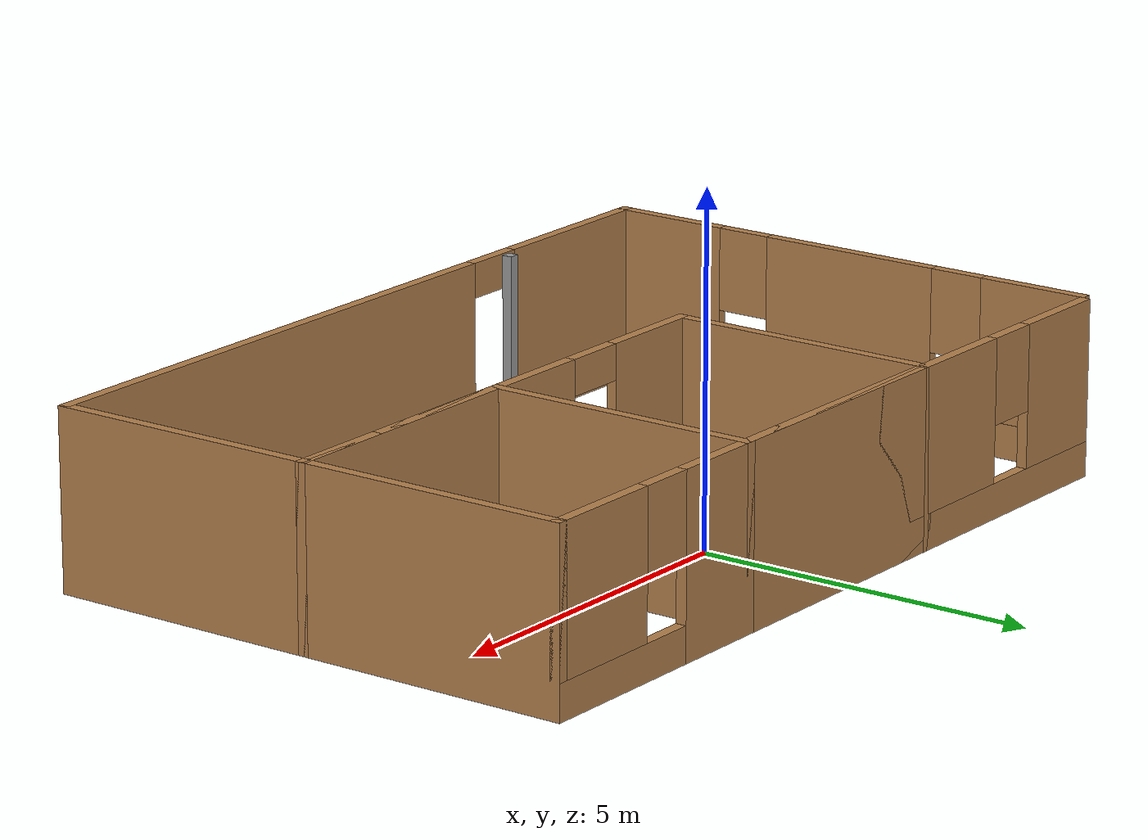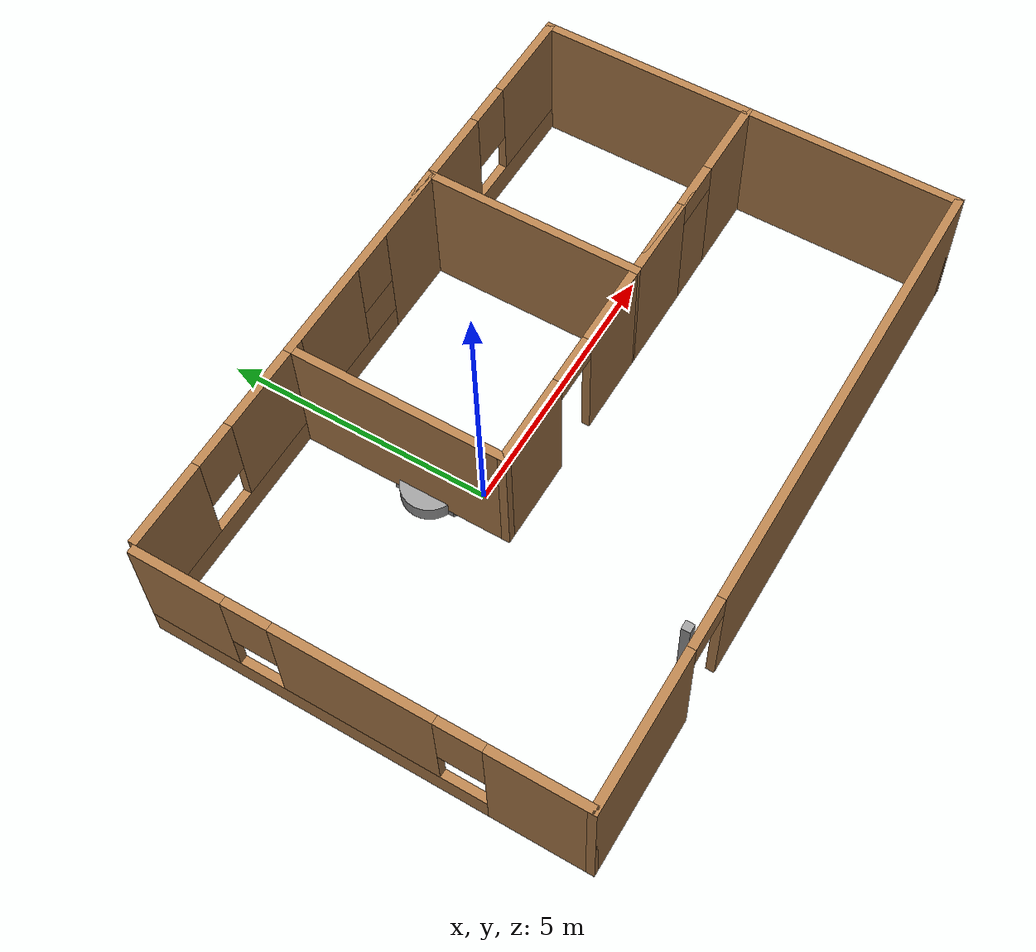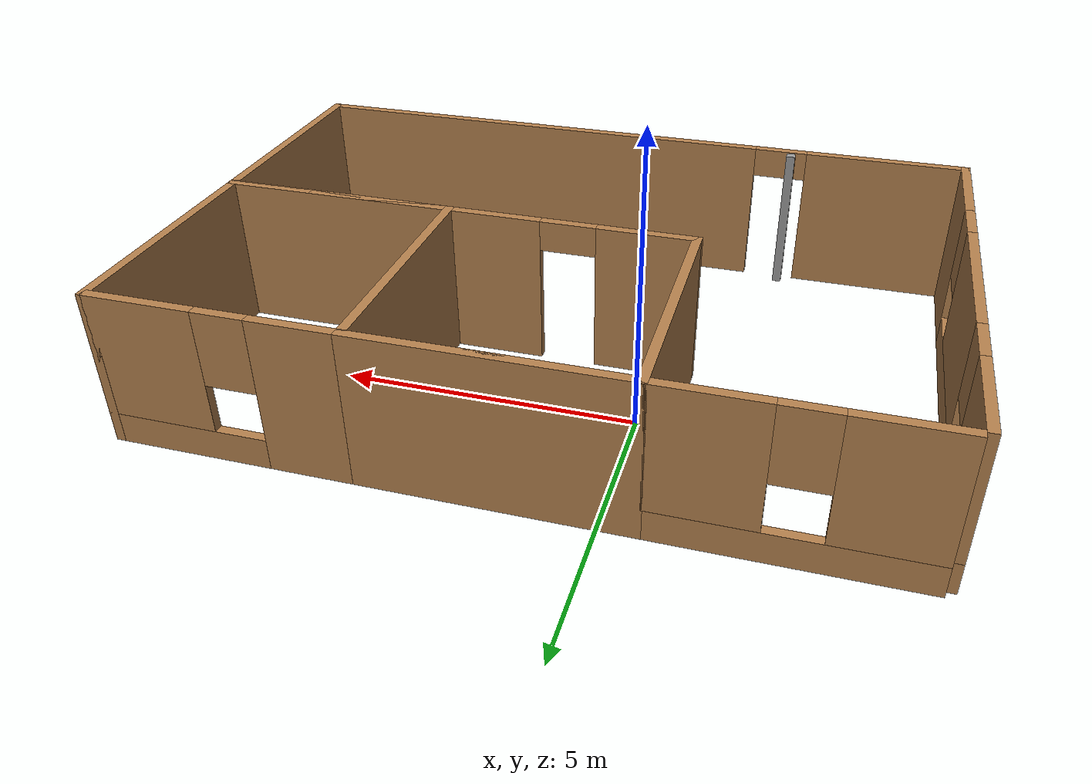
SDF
<?xml version='1.0'?>
<sdf version='1.6'>
  <model name='model'>
    <link name='link_1'>
      <pose frame=''>-0.541361 0.667486 0.5125 0 -0 0</pose>
      <inertial>
        <mass>1</mass>
        <inertia>
          <ixx>0.145833</ixx>
          <ixy>0</ixy>
          <ixz>0</ixz>
          <iyy>0.145833</iyy>
          <iyz>0</iyz>
          <izz>0.125</izz>
        </inertia>
        <pose frame=''>0 0 0 0 -0 0</pose>
      </inertial>
      <gravity>1</gravity>
      <self_collide>0</self_collide>
      <kinematic>0</kinematic>
      <visual name='visual'>
        <pose frame=''>0 0 0 0 -0 0</pose>
        <geometry>
          <cylinder>
            <radius>0.5</radius>
            <length>0.3</length>
          </cylinder>
        </geometry>
        <material>
          <lighting>1</lighting>
          <script>
            <uri>file://media/materials/scripts/gazebo.material</uri>
            <name>Gazebo/Grey</name>
          </script>
          <shader type='pixel'>
            <normal_map>__default__</normal_map>
          </shader>
          <ambient>0.3 0.3 0.3 1</ambient>
          <diffuse>0.7 0.7 0.7 1</diffuse>
          <specular>0.01 0.01 0.01 1</specular>
          <emissive>0 0 0 1</emissive>
        </material>
        <transparency>0</transparency>
        <cast_shadows>1</cast_shadows>
      </visual>
      <collision name='collision'>
        <laser_retro>0</laser_retro>
        <max_contacts>10</max_contacts>
        <pose frame=''>0 0 0 0 -0 0</pose>
        <geometry>
          <cylinder>
            <radius>0.5</radius>
            <length>0.3</length>
          </cylinder>
        </geometry>
        <surface>
          <friction>
            <ode>
              <mu>1</mu>
              <mu2>1</mu2>
              <fdir1>0 0 0</fdir1>
              <slip1>0</slip1>
              <slip2>0</slip2>
            </ode>
            <torsional>
              <coefficient>1</coefficient>
              <patch_radius>0</patch_radius>
              <surface_radius>0</surface_radius>
              <use_patch_radius>1</use_patch_radius>
              <ode>
                <slip>0</slip>
              </ode>
            </torsional>
          </friction>
          <bounce>
            <restitution_coefficient>0</restitution_coefficient>
            <threshold>1e+06</threshold>
          </bounce>
          <contact>
            <collide_without_contact>0</collide_without_contact>
            <collide_without_contact_bitmask>1</collide_without_contact_bitmask>
            <collide_bitmask>1</collide_bitmask>
            <ode>
              <soft_cfm>0</soft_cfm>
              <soft_erp>0.2</soft_erp>
              <kp>1e+13</kp>
              <kd>1</kd>
              <max_vel>0.01</max_vel>
              <min_depth>0</min_depth>
            </ode>
            <bullet>
              <split_impulse>1</split_impulse>
              <split_impulse_penetration_threshold>-0.01</split_impulse_penetration_threshold>
              <soft_cfm>0</soft_cfm>
              <soft_erp>0.2</soft_erp>
              <kp>1e+13</kp>
              <kd>1</kd>
            </bullet>
          </contact>
        </surface>
      </collision>
    </link>
    <link name='link_2'>
      <pose frame=''>-0.541361 1.16749 0.4125 1.5707 -0 0</pose>
      <inertial>
        <mass>1</mass>
        <inertia>
          <ixx>0.145833</ixx>
          <ixy>0</ixy>
          <ixz>0</ixz>
          <iyy>0.145833</iyy>
          <iyz>0</iyz>
          <izz>0.125</izz>
        </inertia>
        <pose frame=''>0 0 0 0 -0 0</pose>
      </inertial>
      <gravity>1</gravity>
      <self_collide>0</self_collide>
      <kinematic>0</kinematic>
      <visual name='visual'>
        <pose frame=''>0 0 0 0 -0 0</pose>
        <geometry>
          <cylinder>
            <radius>0.2</radius>
            <length>0.1</length>
          </cylinder>
        </geometry>
        <material>
          <lighting>1</lighting>
          <script>
            <uri>file://media/materials/scripts/gazebo.material</uri>
            <name>Gazebo/Grey</name>
          </script>
          <shader type='pixel'>
            <normal_map>__default__</normal_map>
          </shader>
          <ambient>0.3 0.3 0.3 1</ambient>
          <diffuse>0.7 0.7 0.7 1</diffuse>
          <specular>0.01 0.01 0.01 1</specular>
          <emissive>0 0 0 1</emissive>
        </material>
        <transparency>0</transparency>
        <cast_shadows>1</cast_shadows>
      </visual>
      <collision name='collision'>
        <laser_retro>0</laser_retro>
        <max_contacts>10</max_contacts>
        <pose frame=''>0 0 0 0 -0 0</pose>
        <geometry>
          <cylinder>
            <radius>0.2</radius>
            <length>0.1</length>
          </cylinder>
        </geometry>
        <surface>
          <friction>
            <ode>
              <mu>1</mu>
              <mu2>1</mu2>
              <fdir1>0 0 0</fdir1>
              <slip1>0</slip1>
              <slip2>0</slip2>
            </ode>
            <torsional>
              <coefficient>1</coefficient>
              <patch_radius>0</patch_radius>
              <surface_radius>0</surface_radius>
              <use_patch_radius>1</use_patch_radius>
              <ode>
                <slip>0</slip>
              </ode>
            </torsional>
          </friction>
          <bounce>
            <restitution_coefficient>0</restitution_coefficient>
            <threshold>1e+06</threshold>
          </bounce>
          <contact>
            <collide_without_contact>0</collide_without_contact>
            <collide_without_contact_bitmask>1</collide_without_contact_bitmask>
            <collide_bitmask>1</collide_bitmask>
            <ode>
              <soft_cfm>0</soft_cfm>
              <soft_erp>0.2</soft_erp>
              <kp>1e+13</kp>
              <kd>1</kd>
              <max_vel>0.01</max_vel>
              <min_depth>0</min_depth>
            </ode>
            <bullet>
              <split_impulse>1</split_impulse>
              <split_impulse_penetration_threshold>-0.01</split_impulse_penetration_threshold>
              <soft_cfm>0</soft_cfm>
              <soft_erp>0.2</soft_erp>
              <kp>1e+13</kp>
              <kd>1</kd>
            </bullet>
          </contact>
        </surface>
      </collision>
    </link>
    <link name='link_2_clone_0'>
      <pose frame=''>-0.541361 0.167486 0.4125 1.5707 -0 0</pose>
      <inertial>
        <mass>1</mass>
        <inertia>
          <ixx>0.145833</ixx>
          <ixy>0</ixy>
          <ixz>0</ixz>
          <iyy>0.145833</iyy>
          <iyz>0</iyz>
          <izz>0.125</izz>
        </inertia>
        <pose frame=''>0 0 0 0 -0 0</pose>
      </inertial>
      <self_collide>0</self_collide>
      <kinematic>0</kinematic>
      <gravity>1</gravity>
      <visual name='visual'>
        <pose frame=''>0 0 0 0 -0 0</pose>
        <geometry>
          <cylinder>
            <radius>0.2</radius>
            <length>0.1</length>
          </cylinder>
        </geometry>
        <material>
          <lighting>1</lighting>
          <script>
            <uri>file://media/materials/scripts/gazebo.material</uri>
            <name>Gazebo/Grey</name>
          </script>
          <shader type='pixel'>
            <normal_map>__default__</normal_map>
          </shader>
          <ambient>0.3 0.3 0.3 1</ambient>
          <diffuse>0.7 0.7 0.7 1</diffuse>
          <specular>0.01 0.01 0.01 1</specular>
          <emissive>0 0 0 1</emissive>
        </material>
        <transparency>0</transparency>
        <cast_shadows>1</cast_shadows>
      </visual>
      <collision name='collision'>
        <laser_retro>0</laser_retro>
        <max_contacts>10</max_contacts>
        <pose frame=''>0 0 0 0 -0 0</pose>
        <geometry>
          <cylinder>
            <radius>0.2</radius>
            <length>0.1</length>
          </cylinder>
        </geometry>
        <surface>
          <friction>
            <ode>
              <mu>1</mu>
              <mu2>1</mu2>
              <fdir1>0 0 0</fdir1>
              <slip1>0</slip1>
              <slip2>0</slip2>
            </ode>
            <torsional>
              <coefficient>1</coefficient>
              <patch_radius>0</patch_radius>
              <surface_radius>0</surface_radius>
              <use_patch_radius>1</use_patch_radius>
              <ode>
                <slip>0</slip>
              </ode>
            </torsional>
          </friction>
          <bounce>
            <restitution_coefficient>0</restitution_coefficient>
            <threshold>1e+06</threshold>
          </bounce>
          <contact>
            <collide_without_contact>0</collide_without_contact>
            <collide_without_contact_bitmask>1</collide_without_contact_bitmask>
            <collide_bitmask>1</collide_bitmask>
            <ode>
              <soft_cfm>0</soft_cfm>
              <soft_erp>0.2</soft_erp>
              <kp>1e+13</kp>
              <kd>1</kd>
              <max_vel>0.01</max_vel>
              <min_depth>0</min_depth>
            </ode>
            <bullet>
              <split_impulse>1</split_impulse>
              <split_impulse_penetration_threshold>-0.01</split_impulse_penetration_threshold>
              <soft_cfm>0</soft_cfm>
              <soft_erp>0.2</soft_erp>
              <kp>1e+13</kp>
              <kd>1</kd>
            </bullet>
          </contact>
        </surface>
      </collision>
    </link>
    <model name='model'>
      <pose frame=''>1.26807 -0.87112 0.4625 0 -0 0</pose>
      <link name='Wall_11'>
        <pose frame=''>0 -3.85 0 0 -0 0</pose>
        <visual name='Wall_11_Visual_0'>
          <pose frame=''>-4.61809 0 1.25 0 -0 0</pose>
          <geometry>
            <box>
              <size>2.76382 0.15 2.5</size>
            </box>
          </geometry>
          <material>
            <script>
              <uri>file://media/materials/scripts/gazebo.material</uri>
              <name>Gazebo/Wood</name>
            </script>
            <ambient>1 1 1 1</ambient>
          </material>
          <meta>
            <layer>0</layer>
          </meta>
        </visual>
        <collision name='Wall_11_Collision_0'>
          <geometry>
            <box>
              <size>2.76382 0.15 2.5</size>
            </box>
          </geometry>
          <pose frame=''>-4.61809 0 1.25 0 -0 0</pose>
        </collision>
        <visual name='Wall_11_Visual_1'>
          <pose frame=''>1.83191 0 1.25 0 -0 0</pose>
          <geometry>
            <box>
              <size>8.33618 0.15 2.5</size>
            </box>
          </geometry>
          <material>
            <script>
              <uri>file://media/materials/scripts/gazebo.material</uri>
              <name>Gazebo/Wood</name>
            </script>
            <ambient>1 1 1 1</ambient>
          </material>
          <meta>
            <layer>0</layer>
          </meta>
        </visual>
        <collision name='Wall_11_Collision_1'>
          <geometry>
            <box>
              <size>8.33618 0.15 2.5</size>
            </box>
          </geometry>
          <pose frame=''>1.83191 0 1.25 0 -0 0</pose>
        </collision>
        <visual name='Wall_11_Visual_2'>
          <pose frame=''>-2.78618 0 2.25 0 -0 0</pose>
          <geometry>
            <box>
              <size>0.9 0.15 0.5</size>
            </box>
          </geometry>
          <material>
            <script>
              <uri>file://media/materials/scripts/gazebo.material</uri>
              <name>Gazebo/Wood</name>
            </script>
            <ambient>1 1 1 1</ambient>
          </material>
          <meta>
            <layer>0</layer>
          </meta>
        </visual>
        <collision name='Wall_11_Collision_2'>
          <geometry>
            <box>
              <size>0.9 0.15 0.5</size>
            </box>
          </geometry>
          <pose frame=''>-2.78618 0 2.25 0 -0 0</pose>
        </collision>
      </link>
      <link name='Wall_12'>
        <collision name='Wall_12_Collision'>
          <geometry>
            <box>
              <size>4 0.15 2.5</size>
            </box>
          </geometry>
          <pose frame=''>0 0 1.25 0 -0 0</pose>
        </collision>
        <visual name='Wall_12_Visual'>
          <pose frame=''>0 0 1.25 0 -0 0</pose>
          <geometry>
            <box>
              <size>4 0.15 2.5</size>
            </box>
          </geometry>
          <material>
            <script>
              <uri>file://media/materials/scripts/gazebo.material</uri>
              <name>Gazebo/Wood</name>
            </script>
            <ambient>1 1 1 1</ambient>
          </material>
          <meta>
            <layer>0</layer>
          </meta>
        </visual>
        <pose frame=''>5.925 -1.925 0 0 -0 1.5708</pose>
      </link>
      <link name='Wall_13'>
        <collision name='Wall_13_Collision'>
          <geometry>
            <box>
              <size>4 0.15 2.5</size>
            </box>
          </geometry>
          <pose frame=''>0 0 1.25 0 -0 0</pose>
        </collision>
        <visual name='Wall_13_Visual'>
          <pose frame=''>0 0 1.25 0 -0 0</pose>
          <geometry>
            <box>
              <size>4 0.15 2.5</size>
            </box>
          </geometry>
          <material>
            <script>
              <uri>file://media/materials/scripts/gazebo.material</uri>
              <name>Gazebo/Wood</name>
            </script>
            <ambient>1 1 1 1</ambient>
          </material>
          <meta>
            <layer>0</layer>
          </meta>
        </visual>
        <pose frame=''>4 0 0 0 -0 3.14159</pose>
      </link>
      <link name='Wall_14'>
        <collision name='Wall_14_Collision'>
          <geometry>
            <box>
              <size>4 0.15 2.5</size>
            </box>
          </geometry>
          <pose frame=''>0 0 1.25 0 -0 0</pose>
        </collision>
        <visual name='Wall_14_Visual'>
          <pose frame=''>0 0 1.25 0 -0 0</pose>
          <geometry>
            <box>
              <size>4 0.15 2.5</size>
            </box>
          </geometry>
          <material>
            <script>
              <uri>file://media/materials/scripts/gazebo.material</uri>
              <name>Gazebo/Wood</name>
            </script>
            <ambient>1 1 1 1</ambient>
          </material>
          <meta>
            <layer>0</layer>
          </meta>
        </visual>
        <pose frame=''>2.075 1.925 0 0 -0 1.5708</pose>
      </link>
      <link name='Wall_15'>
        <pose frame=''>4 3.85 0 0 -0 0</pose>
        <visual name='Wall_15_Visual_0'>
          <pose frame=''>-1.28136 0 1.25 0 -0 0</pose>
          <geometry>
            <box>
              <size>1.43727 0.15 2.5</size>
            </box>
          </geometry>
          <material>
            <script>
              <uri>file://media/materials/scripts/gazebo.material</uri>
              <name>Gazebo/Wood</name>
            </script>
            <ambient>1 1 1 1</ambient>
          </material>
          <meta>
            <layer>0</layer>
          </meta>
        </visual>
        <collision name='Wall_15_Collision_0'>
          <geometry>
            <box>
              <size>1.43727 0.15 2.5</size>
            </box>
          </geometry>
          <pose frame=''>-1.28136 0 1.25 0 -0 0</pose>
        </collision>
        <visual name='Wall_15_Visual_1'>
          <pose frame=''>0.718636 0 0.25 0 -0 0</pose>
          <geometry>
            <box>
              <size>2.56273 0.15 0.5</size>
            </box>
          </geometry>
          <material>
            <script>
              <uri>file://media/materials/scripts/gazebo.material</uri>
              <name>Gazebo/Wood</name>
            </script>
            <ambient>1 1 1 1</ambient>
          </material>
          <meta>
            <layer>0</layer>
          </meta>
        </visual>
        <collision name='Wall_15_Collision_1'>
          <geometry>
            <box>
              <size>2.56273 0.15 0.5</size>
            </box>
          </geometry>
          <pose frame=''>0.718636 0 0.25 0 -0 0</pose>
        </collision>
        <visual name='Wall_15_Visual_2'>
          <pose frame=''>1.11864 0 1.5 0 -0 0</pose>
          <geometry>
            <box>
              <size>1.76273 0.15 2</size>
            </box>
          </geometry>
          <material>
            <script>
              <uri>file://media/materials/scripts/gazebo.material</uri>
              <name>Gazebo/Wood</name>
            </script>
            <ambient>1 1 1 1</ambient>
          </material>
          <meta>
            <layer>0</layer>
          </meta>
        </visual>
        <collision name='Wall_15_Collision_2'>
          <geometry>
            <box>
              <size>1.76273 0.15 2</size>
            </box>
          </geometry>
          <pose frame=''>1.11864 0 1.5 0 -0 0</pose>
        </collision>
        <visual name='Wall_15_Visual_3'>
          <pose frame=''>-0.162727 0 1.9 0 -0 0</pose>
          <geometry>
            <box>
              <size>0.8 0.15 1.2</size>
            </box>
          </geometry>
          <material>
            <script>
              <uri>file://media/materials/scripts/gazebo.material</uri>
              <name>Gazebo/Wood</name>
            </script>
            <ambient>1 1 1 1</ambient>
          </material>
          <meta>
            <layer>0</layer>
          </meta>
        </visual>
        <collision name='Wall_15_Collision_3'>
          <geometry>
            <box>
              <size>0.8 0.15 1.2</size>
            </box>
          </geometry>
          <pose frame=''>-0.162727 0 1.9 0 -0 0</pose>
        </collision>
      </link>
      <link name='Wall_16'>
        <collision name='Wall_16_Collision'>
          <geometry>
            <box>
              <size>4 0.15 2.5</size>
            </box>
          </geometry>
          <pose frame=''>0 0 1.25 0 -0 0</pose>
        </collision>
        <visual name='Wall_16_Visual'>
          <pose frame=''>0 0 1.25 0 -0 0</pose>
          <geometry>
            <box>
              <size>4 0.15 2.5</size>
            </box>
          </geometry>
          <material>
            <script>
              <uri>file://media/materials/scripts/gazebo.material</uri>
              <name>Gazebo/Wood</name>
            </script>
            <ambient>1 1 1 1</ambient>
          </material>
          <meta>
            <layer>0</layer>
          </meta>
        </visual>
        <pose frame=''>5.925 1.925 0 0 0 -1.5708</pose>
      </link>
      <link name='Wall_17'>
        <pose frame=''>2 0 0 0 -0 3.14159</pose>
        <visual name='Wall_17_Visual_0'>
          <pose frame=''>-3.25004 0 1.25 0 -0 0</pose>
          <geometry>
            <box>
              <size>1.49992 0.15 2.5</size>
            </box>
          </geometry>
          <material>
            <script>
              <uri>file://media/materials/scripts/gazebo.material</uri>
              <name>Gazebo/Wood</name>
            </script>
            <ambient>1 1 1 1</ambient>
          </material>
          <meta>
            <layer>0</layer>
          </meta>
        </visual>
        <collision name='Wall_17_Collision_0'>
          <geometry>
            <box>
              <size>1.49992 0.15 2.5</size>
            </box>
          </geometry>
          <pose frame=''>-3.25004 0 1.25 0 -0 0</pose>
        </collision>
        <visual name='Wall_17_Visual_1'>
          <pose frame=''>-0.06836 0 1.25 0 -0 0</pose>
          <geometry>
            <box>
              <size>3.06343 0.15 2.5</size>
            </box>
          </geometry>
          <material>
            <script>
              <uri>file://media/materials/scripts/gazebo.material</uri>
              <name>Gazebo/Wood</name>
            </script>
            <ambient>1 1 1 1</ambient>
          </material>
          <meta>
            <layer>0</layer>
          </meta>
        </visual>
        <collision name='Wall_17_Collision_1'>
          <geometry>
            <box>
              <size>3.06343 0.15 2.5</size>
            </box>
          </geometry>
          <pose frame=''>-0.06836 0 1.25 0 -0 0</pose>
        </collision>
        <visual name='Wall_17_Visual_2'>
          <pose frame=''>3.18168 0 1.25 0 -0 0</pose>
          <geometry>
            <box>
              <size>1.63664 0.15 2.5</size>
            </box>
          </geometry>
          <material>
            <script>
              <uri>file://media/materials/scripts/gazebo.material</uri>
              <name>Gazebo/Wood</name>
            </script>
            <ambient>1 1 1 1</ambient>
          </material>
          <meta>
            <layer>0</layer>
          </meta>
        </visual>
        <collision name='Wall_17_Collision_2'>
          <geometry>
            <box>
              <size>1.63664 0.15 2.5</size>
            </box>
          </geometry>
          <pose frame=''>3.18168 0 1.25 0 -0 0</pose>
        </collision>
        <visual name='Wall_17_Visual_3'>
          <pose frame=''>-2.05008 0 2.25 0 -0 0</pose>
          <geometry>
            <box>
              <size>0.9 0.15 0.5</size>
            </box>
          </geometry>
          <material>
            <script>
              <uri>file://media/materials/scripts/gazebo.material</uri>
              <name>Gazebo/Wood</name>
            </script>
            <ambient>1 1 1 1</ambient>
          </material>
          <meta>
            <layer>0</layer>
          </meta>
        </visual>
        <collision name='Wall_17_Collision_3'>
          <geometry>
            <box>
              <size>0.9 0.15 0.5</size>
            </box>
          </geometry>
          <pose frame=''>-2.05008 0 2.25 0 -0 0</pose>
        </collision>
        <visual name='Wall_17_Visual_4'>
          <pose frame=''>1.91335 0 2.25 0 -0 0</pose>
          <geometry>
            <box>
              <size>0.9 0.15 0.5</size>
            </box>
          </geometry>
          <material>
            <script>
              <uri>file://media/materials/scripts/gazebo.material</uri>
              <name>Gazebo/Wood</name>
            </script>
            <ambient>1 1 1 1</ambient>
          </material>
          <meta>
            <layer>0</layer>
          </meta>
        </visual>
        <collision name='Wall_17_Collision_4'>
          <geometry>
            <box>
              <size>0.9 0.15 0.5</size>
            </box>
          </geometry>
          <pose frame=''>1.91335 0 2.25 0 -0 0</pose>
        </collision>
      </link>
      <link name='Wall_18'>
        <collision name='Wall_18_Collision'>
          <geometry>
            <box>
              <size>4 0.15 2.5</size>
            </box>
          </geometry>
          <pose frame=''>0 0 1.25 0 -0 0</pose>
        </collision>
        <visual name='Wall_18_Visual'>
          <pose frame=''>0 0 1.25 0 -0 0</pose>
          <geometry>
            <box>
              <size>4 0.15 2.5</size>
            </box>
          </geometry>
          <material>
            <script>
              <uri>file://media/materials/scripts/gazebo.material</uri>
              <name>Gazebo/Wood</name>
            </script>
            <ambient>1 1 1 1</ambient>
          </material>
          <meta>
            <layer>0</layer>
          </meta>
        </visual>
        <pose frame=''>-1.925 1.925 0 0 -0 1.5708</pose>
      </link>
      <link name='Wall_19'>
        <collision name='Wall_19_Collision'>
          <geometry>
            <box>
              <size>4.15 0.15 2.5</size>
            </box>
          </geometry>
          <pose frame=''>0 0 1.25 0 -0 0</pose>
        </collision>
        <visual name='Wall_19_Visual'>
          <pose frame=''>0 0 1.25 0 -0 0</pose>
          <geometry>
            <box>
              <size>4.15 0.15 2.5</size>
            </box>
          </geometry>
          <material>
            <script>
              <uri>file://media/materials/scripts/gazebo.material</uri>
              <name>Gazebo/Wood</name>
            </script>
            <ambient>1 1 1 1</ambient>
          </material>
          <meta>
            <layer>0</layer>
          </meta>
        </visual>
        <pose frame=''>0.075 3.85 0 0 -0 0</pose>
      </link>
      <link name='Wall_20'>
        <pose frame=''>-1.85 3.85 0 0 -0 3.14159</pose>
        <visual name='Wall_20_Visual_0'>
          <pose frame=''>-3.24812 0 1.25 0 -0 0</pose>
          <geometry>
            <box>
              <size>1.50375 0.15 2.5</size>
            </box>
          </geometry>
          <material>
            <script>
              <uri>file://media/materials/scripts/gazebo.material</uri>
              <name>Gazebo/Wood</name>
            </script>
            <ambient>1 1 1 1</ambient>
          </material>
          <meta>
            <layer>0</layer>
          </meta>
        </visual>
        <collision name='Wall_20_Collision_0'>
          <geometry>
            <box>
              <size>1.50375 0.15 2.5</size>
            </box>
          </geometry>
          <pose frame=''>-3.24812 0 1.25 0 -0 0</pose>
        </collision>
        <visual name='Wall_20_Visual_1'>
          <pose frame=''>0.751877 0 0.25 0 -0 0</pose>
          <geometry>
            <box>
              <size>6.49625 0.15 0.5</size>
            </box>
          </geometry>
          <material>
            <script>
              <uri>file://media/materials/scripts/gazebo.material</uri>
              <name>Gazebo/Wood</name>
            </script>
            <ambient>1 1 1 1</ambient>
          </material>
          <meta>
            <layer>0</layer>
          </meta>
        </visual>
        <collision name='Wall_20_Collision_1'>
          <geometry>
            <box>
              <size>6.49625 0.15 0.5</size>
            </box>
          </geometry>
          <pose frame=''>0.751877 0 0.25 0 -0 0</pose>
        </collision>
        <visual name='Wall_20_Visual_2'>
          <pose frame=''>-0.008131 0 1.5 0 -0 0</pose>
          <geometry>
            <box>
              <size>3.37623 0.15 2</size>
            </box>
          </geometry>
          <material>
            <script>
              <uri>file://media/materials/scripts/gazebo.material</uri>
              <name>Gazebo/Wood</name>
            </script>
            <ambient>1 1 1 1</ambient>
          </material>
          <meta>
            <layer>0</layer>
          </meta>
        </visual>
        <collision name='Wall_20_Collision_2'>
          <geometry>
            <box>
              <size>3.37623 0.15 2</size>
            </box>
          </geometry>
          <pose frame=''>-0.008131 0 1.5 0 -0 0</pose>
        </collision>
        <visual name='Wall_20_Visual_3'>
          <pose frame=''>3.23999 0 1.5 0 -0 0</pose>
          <geometry>
            <box>
              <size>1.52001 0.15 2</size>
            </box>
          </geometry>
          <material>
            <script>
              <uri>file://media/materials/scripts/gazebo.material</uri>
              <name>Gazebo/Wood</name>
            </script>
            <ambient>1 1 1 1</ambient>
          </material>
          <meta>
            <layer>0</layer>
          </meta>
        </visual>
        <collision name='Wall_20_Collision_3'>
          <geometry>
            <box>
              <size>1.52001 0.15 2</size>
            </box>
          </geometry>
          <pose frame=''>3.23999 0 1.5 0 -0 0</pose>
        </collision>
        <visual name='Wall_20_Visual_4'>
          <pose frame=''>-2.09625 0 1.9 0 -0 0</pose>
          <geometry>
            <box>
              <size>0.8 0.15 1.2</size>
            </box>
          </geometry>
          <material>
            <script>
              <uri>file://media/materials/scripts/gazebo.material</uri>
              <name>Gazebo/Wood</name>
            </script>
            <ambient>1 1 1 1</ambient>
          </material>
          <meta>
            <layer>0</layer>
          </meta>
        </visual>
        <collision name='Wall_20_Collision_4'>
          <geometry>
            <box>
              <size>0.8 0.15 1.2</size>
            </box>
          </geometry>
          <pose frame=''>-2.09625 0 1.9 0 -0 0</pose>
        </collision>
        <visual name='Wall_20_Visual_5'>
          <pose frame=''>2.07999 0 1.9 0 -0 0</pose>
          <geometry>
            <box>
              <size>0.8 0.15 1.2</size>
            </box>
          </geometry>
          <material>
            <script>
              <uri>file://media/materials/scripts/gazebo.material</uri>
              <name>Gazebo/Wood</name>
            </script>
            <ambient>1 1 1 1</ambient>
          </material>
          <meta>
            <layer>0</layer>
          </meta>
        </visual>
        <collision name='Wall_20_Collision_5'>
          <geometry>
            <box>
              <size>0.8 0.15 1.2</size>
            </box>
          </geometry>
          <pose frame=''>2.07999 0 1.9 0 -0 0</pose>
        </collision>
      </link>
      <link name='Wall_23'>
        <pose frame=''>-5.925 -0.05 0 0 -0 1.5708</pose>
        <visual name='Wall_23_Visual_0'>
          <pose frame=''>-2.98532 0 1.25 0 -0 0</pose>
          <geometry>
            <box>
              <size>1.77936 0.15 2.5</size>
            </box>
          </geometry>
          <material>
            <script>
              <uri>file://media/materials/scripts/gazebo.material</uri>
              <name>Gazebo/Wood</name>
            </script>
            <ambient>1 1 1 1</ambient>
          </material>
          <meta>
            <layer>0</layer>
          </meta>
        </visual>
        <collision name='Wall_23_Collision_0'>
          <geometry>
            <box>
              <size>1.77936 0.15 2.5</size>
            </box>
          </geometry>
          <pose frame=''>-2.98532 0 1.25 0 -0 0</pose>
        </collision>
        <visual name='Wall_23_Visual_1'>
          <pose frame=''>0.889679 0 0.25 0 -0 0</pose>
          <geometry>
            <box>
              <size>5.97064 0.15 0.5</size>
            </box>
          </geometry>
          <material>
            <script>
              <uri>file://media/materials/scripts/gazebo.material</uri>
              <name>Gazebo/Wood</name>
            </script>
            <ambient>1 1 1 1</ambient>
          </material>
          <meta>
            <layer>0</layer>
          </meta>
        </visual>
        <collision name='Wall_23_Collision_1'>
          <geometry>
            <box>
              <size>5.97064 0.15 0.5</size>
            </box>
          </geometry>
          <pose frame=''>0.889679 0 0.25 0 -0 0</pose>
        </collision>
        <visual name='Wall_23_Visual_2'>
          <pose frame=''>0.07327 0 1.5 0 -0 0</pose>
          <geometry>
            <box>
              <size>2.73783 0.15 2</size>
            </box>
          </geometry>
          <material>
            <script>
              <uri>file://media/materials/scripts/gazebo.material</uri>
              <name>Gazebo/Wood</name>
            </script>
            <ambient>1 1 1 1</ambient>
          </material>
          <meta>
            <layer>0</layer>
          </meta>
        </visual>
        <collision name='Wall_23_Collision_2'>
          <geometry>
            <box>
              <size>2.73783 0.15 2</size>
            </box>
          </geometry>
          <pose frame=''>0.07327 0 1.5 0 -0 0</pose>
        </collision>
        <visual name='Wall_23_Visual_3'>
          <pose frame=''>3.05859 0 1.5 0 -0 0</pose>
          <geometry>
            <box>
              <size>1.63282 0.15 2</size>
            </box>
          </geometry>
          <material>
            <script>
              <uri>file://media/materials/scripts/gazebo.material</uri>
              <name>Gazebo/Wood</name>
            </script>
            <ambient>1 1 1 1</ambient>
          </material>
          <meta>
            <layer>0</layer>
          </meta>
        </visual>
        <collision name='Wall_23_Collision_3'>
          <geometry>
            <box>
              <size>1.63282 0.15 2</size>
            </box>
          </geometry>
          <pose frame=''>3.05859 0 1.5 0 -0 0</pose>
        </collision>
        <visual name='Wall_23_Visual_4'>
          <pose frame=''>-1.69564 0 1.9 0 -0 0</pose>
          <geometry>
            <box>
              <size>0.8 0.15 1.2</size>
            </box>
          </geometry>
          <material>
            <script>
              <uri>file://media/materials/scripts/gazebo.material</uri>
              <name>Gazebo/Wood</name>
            </script>
            <ambient>1 1 1 1</ambient>
          </material>
          <meta>
            <layer>0</layer>
          </meta>
        </visual>
        <collision name='Wall_23_Collision_4'>
          <geometry>
            <box>
              <size>0.8 0.15 1.2</size>
            </box>
          </geometry>
          <pose frame=''>-1.69564 0 1.9 0 -0 0</pose>
        </collision>
        <visual name='Wall_23_Visual_5'>
          <pose frame=''>1.84218 0 1.9 0 -0 0</pose>
          <geometry>
            <box>
              <size>0.8 0.15 1.2</size>
            </box>
          </geometry>
          <material>
            <script>
              <uri>file://media/materials/scripts/gazebo.material</uri>
              <name>Gazebo/Wood</name>
            </script>
            <ambient>1 1 1 1</ambient>
          </material>
          <meta>
            <layer>0</layer>
          </meta>
        </visual>
        <collision name='Wall_23_Collision_5'>
          <geometry>
            <box>
              <size>0.8 0.15 1.2</size>
            </box>
          </geometry>
          <pose frame=''>1.84218 0 1.9 0 -0 0</pose>
        </collision>
      </link>
      <link name='Wall_8'>
        <collision name='Wall_8_Collision'>
          <geometry>
            <box>
              <size>0.15 0.15 2.5</size>
            </box>
          </geometry>
          <pose frame=''>0 0 1.25 0 -0 0</pose>
        </collision>
        <visual name='Wall_8_Visual'>
          <pose frame=''>0 0 1.25 0 -0 0</pose>
          <geometry>
            <box>
              <size>0.15 0.15 2.5</size>
            </box>
          </geometry>
          <material>
            <script>
              <uri>file://media/materials/scripts/gazebo.material</uri>
              <name>Gazebo/Grey</name>
            </script>
            <ambient>1 1 1 1</ambient>
          </material>
          <meta>
            <layer>0</layer>
          </meta>
        </visual>
        <pose frame=''>-2.97238 -3.6532 0 0 -0 0</pose>
      </link>
      <static>1</static>
    </model>
    <joint name='link_1_JOINT_0' type='revolute'>
      <parent>link_1</parent>
      <child>link_2</child>
      <pose frame=''>0 0 0 0 -0 0</pose>
      <axis>
        <xyz>0 0 1</xyz>
        <use_parent_model_frame>0</use_parent_model_frame>
        <limit>
          <lower>-1.79769e+308</lower>
          <upper>1.79769e+308</upper>
          <effort>-1</effort>
          <velocity>-1</velocity>
        </limit>
        <dynamics>
          <spring_reference>0</spring_reference>
          <spring_stiffness>0</spring_stiffness>
          <damping>0</damping>
        </dynamics>
      </axis>
      <physics>
        <ode>
          <limit>
            <cfm>0</cfm>
            <erp>0.2</erp>
          </limit>
          <suspension>
            <cfm>0</cfm>
            <erp>0.2</erp>
          </suspension>
        </ode>
      </physics>
    </joint>
    <joint name='link_1_JOINT_1' type='revolute'>
      <parent>link_1</parent>
      <child>link_2_clone_0</child>
      <pose frame=''>0 0 0 0 -0 0</pose>
      <axis>
        <xyz>0 0 1</xyz>
        <use_parent_model_frame>0</use_parent_model_frame>
        <limit>
          <lower>-1.79769e+308</lower>
          <upper>1.79769e+308</upper>
          <effort>-1</effort>
          <velocity>-1</velocity>
        </limit>
        <dynamics>
          <spring_reference>0</spring_reference>
          <spring_stiffness>0</spring_stiffness>
          <damping>0</damping>
        </dynamics>
      </axis>
      <physics>
        <ode>
          <limit>
            <cfm>0</cfm>
            <erp>0.2</erp>
          </limit>
          <suspension>
            <cfm>0</cfm>
            <erp>0.2</erp>
          </suspension>
        </ode>
      </physics>
    </joint>
    <static>0</static>
    <allow_auto_disable>1</allow_auto_disable>
  </model>
</sdf>
